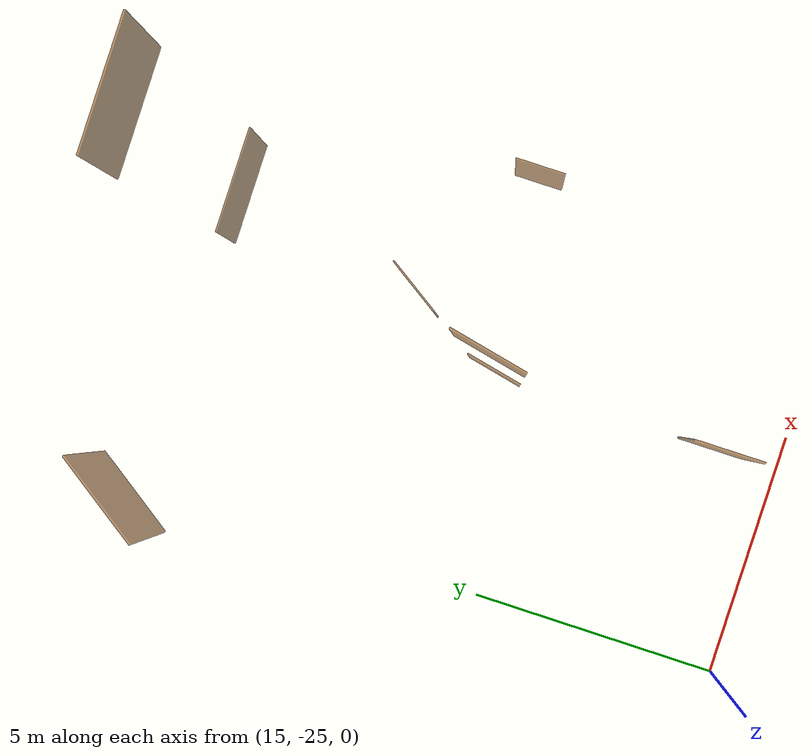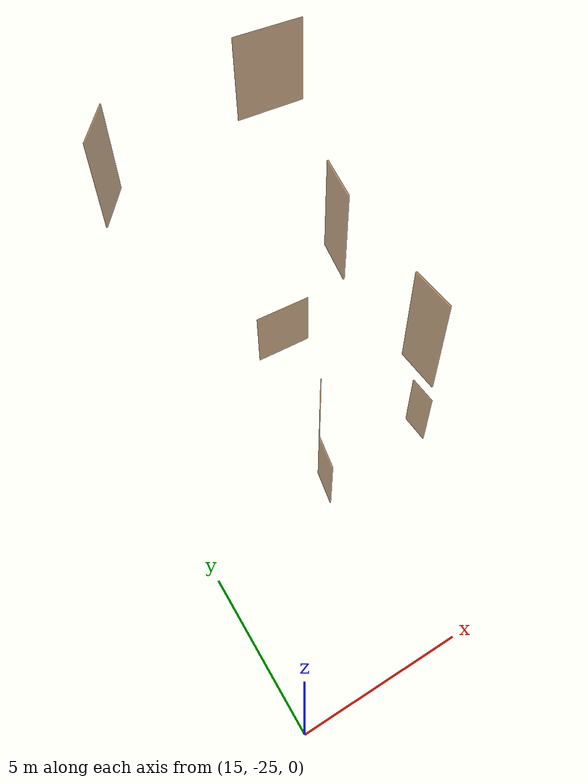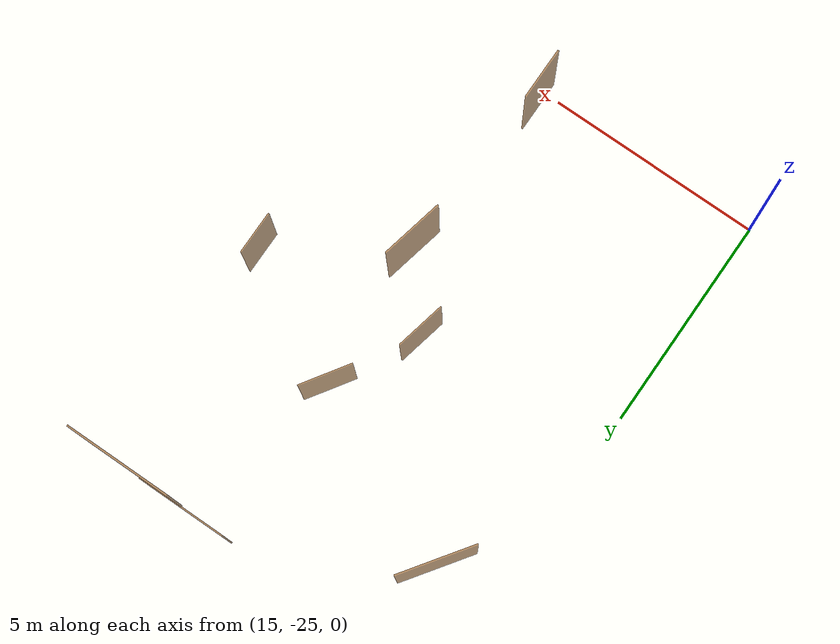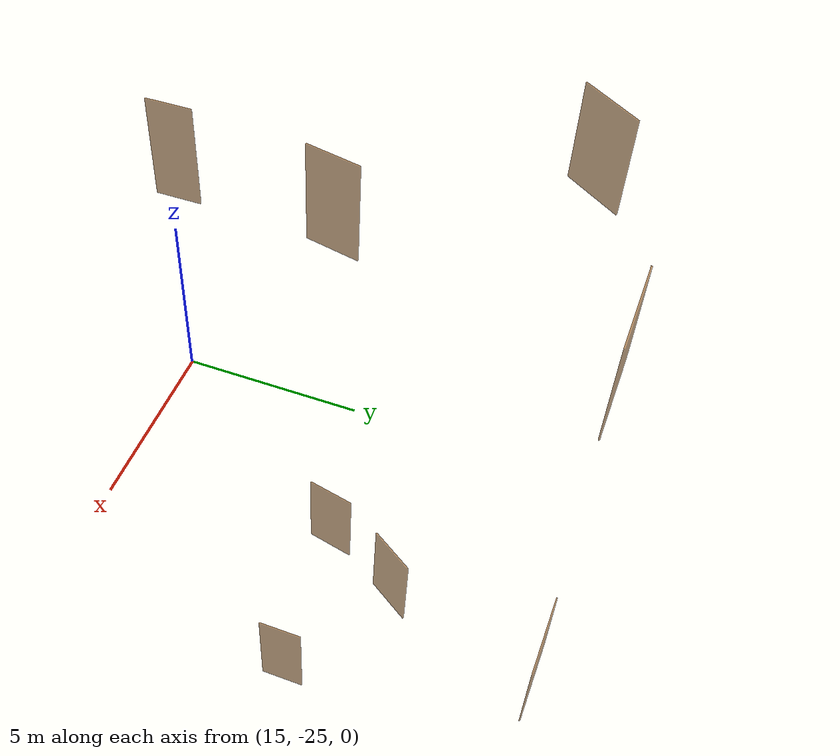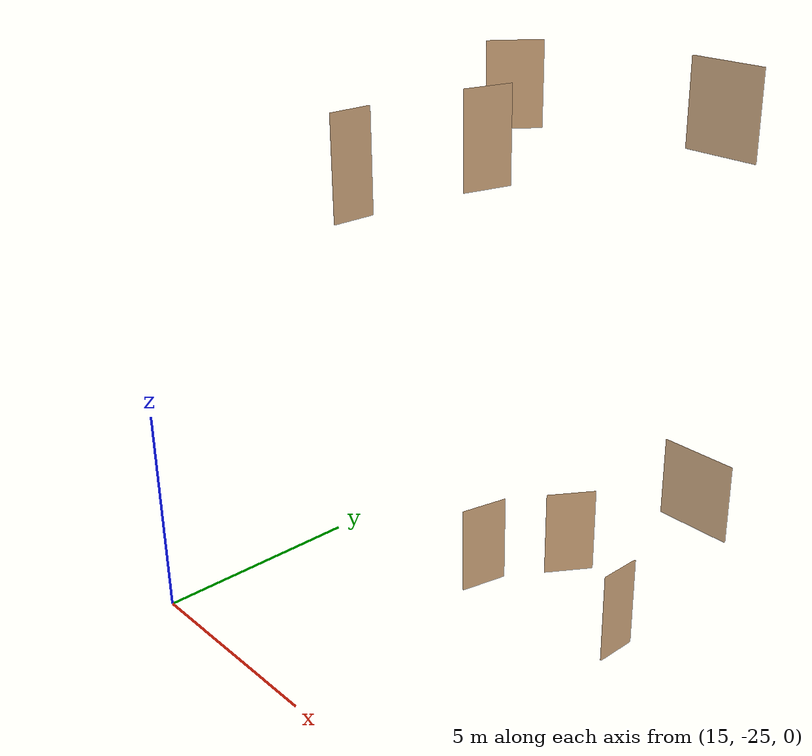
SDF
<sdf version="1.7">
 <world name="sim_world">
  <model name="L1_left_consult_rm_2_inner">
   <pose>23.381523787546655 -18.60085573631785 0.0 0 0 -1.5707963267948966</pose>
   <static>true</static>
   <link name="right">
    <pose>0 0 1.11 0 0 0</pose>
    <visual name="right_visual">
     <geometry><box><size>0.9945421329948851 0.03 2.2</size></box></geometry>
     <material>
      <ambient>0.5 0.25 0 0.6</ambient>
      <diffuse>0.5 0.25 0 0.6</diffuse>
      <pbr><metal><metalness>0.0</metalness></metal></pbr>
     </material>
    </visual>
    <collision name="right_collision">
     <geometry><box><size>0.9945421329948851 0.03 2.2</size></box></geometry>
     <surface><contact><collide_bitmask>0x02</collide_bitmask></contact></surface>
    </collision>
    <inertial>
     <mass>50.0</mass>
     <inertia><ixx>20.17041666666667</ixx><iyy>24.287975226258403</iyy><izz>4.125058559591733</izz></inertia>
    </inertial>
   </link>
   <joint name="right_joint" type="prismatic">
    <parent>world</parent>
    <child>right</child>
    <axis>
     <xyz>1 0 0</xyz>
     <limit><lower>0.0</lower><upper>1.0045421329948852</upper><effort>500.0</effort></limit>
    </axis>
   </joint>
  </model>
  <model name="L1_left_consult_rm_13_inner">
   <pose>20.473727933541035 -17.004284450598067 0.0 0 0 0.9869285289705991</pose>
   <static>true</static>
   <link name="right">
    <pose>0 0 1.11 0 0 0</pose>
    <visual name="right_visual">
     <geometry><box><size>1.2252035838140947 0.03 2.2</size></box></geometry>
     <material>
      <ambient>0.5 0.25 0 0.6</ambient>
      <diffuse>0.5 0.25 0 0.6</diffuse>
      <pbr><metal><metalness>0.0</metalness></metal></pbr>
     </material>
    </visual>
    <collision name="right_collision">
     <geometry><box><size>1.2252035838140947 0.03 2.2</size></box></geometry>
     <surface><contact><collide_bitmask>0x02</collide_bitmask></contact></surface>
    </collision>
    <inertial>
     <mass>50.0</mass>
     <inertia><ixx>20.17041666666667</ixx><iyy>26.421349257462094</iyy><izz>6.258432590795422</izz></inertia>
    </inertial>
   </link>
   <joint name="right_joint" type="revolute">
    <parent>world</parent>
    <child>right</child>
    <axis><xyz>0 0 -1</xyz><limit><lower>0</lower><upper>1.57</upper></limit></axis>
    <pose>0.6176017919070473 0 0 0 0 0</pose>
   </joint>
  </model>
  <model name="L1_left_consult_rm_12_inner">
   <pose>19.442438752355695 -18.948876966270543 0.0 0 0 1.3549047324942773</pose>
   <static>true</static>
   <link name="right">
    <pose>0 0 1.11 0 0 0</pose>
    <visual name="right_visual">
     <geometry><box><size>1.1707228872175774 0.03 2.2</size></box></geometry>
     <material>
      <ambient>0.5 0.25 0 0.6</ambient>
      <diffuse>0.5 0.25 0 0.6</diffuse>
      <pbr><metal><metalness>0.0</metalness></metal></pbr>
     </material>
    </visual>
    <collision name="right_collision">
     <geometry><box><size>1.1707228872175774 0.03 2.2</size></box></geometry>
     <surface><contact><collide_bitmask>0x02</collide_bitmask></contact></surface>
    </collision>
    <inertial>
     <mass>50.0</mass>
     <inertia><ixx>20.17041666666667</ixx><iyy>25.87746699439609</iyy><izz>5.714550327729419</izz></inertia>
    </inertial>
   </link>
   <joint name="right_joint" type="revolute">
    <parent>world</parent>
    <child>right</child>
    <axis><xyz>0 0 -1</xyz><limit><lower>0</lower><upper>1.57</upper></limit></axis>
    <pose>0.5903614436087887 0 0 0 0 0</pose>
   </joint>
  </model>
  <model name="L1_left_inner">
   <pose>21.332204530594996 -13.113995615553259 0.0 0 0 0.0</pose>
   <link name="right">
    <pose>0 0 1.11 0 0 0</pose>
    <visual name="right_visual">
     <geometry><box><size>2.0904845967462773 0.03 2.2</size></box></geometry>
     <material>
      <ambient>0.5 0.25 0 0.6</ambient>
      <diffuse>0.5 0.25 0 0.6</diffuse>
      <pbr><metal><metalness>0.0</metalness></metal></pbr>
     </material>
    </visual>
    <collision name="right_collision">
     <geometry><box><size>2.0904845967462773 0.03 2.2</size></box></geometry>
     <surface><contact><collide_bitmask>0x02</collide_bitmask></contact></surface>
    </collision>
    <inertial>
     <mass>50.0</mass>
     <inertia><ixx>20.17041666666667</ixx><iyy>38.37552437180603</iyy><izz>18.212607705139355</izz></inertia>
    </inertial>
   </link>
   <joint name="right_joint" type="prismatic">
    <parent>world</parent>
    <child>right</child>
    <axis>
     <xyz>1 0 0</xyz>
     <limit><lower>0.0</lower><upper>2.100484596746277</upper><effort>500.0</effort></limit>
    </axis>
   </joint>
   <plugin name="door" filename="libdoor.so">
    <v_max_door>0.2</v_max_door>
    <a_max_door>0.2</a_max_door>
    <a_nom_door>0.08</a_nom_door>
    <dx_min_door>0.001</dx_min_door>
    <f_max_door>100.0</f_max_door>
    <door name="L1_left_inner" type="SlidingDoor" left_joint_name="empty_joint" right_joint_name="right_joint"/>
   </plugin>
  </model>
  <model name="L2_left_consult_rm_13_outer">
   <pose>16.03554863274491 -14.728456597823172 10.0 0 0 0.9593844290063241</pose>
   <static>true</static>
   <link name="right">
    <pose>0 0 1.11 0 0 0</pose>
    <visual name="right_visual">
     <geometry><box><size>1.4433538767392087 0.03 2.2</size></box></geometry>
     <material>
      <ambient>0.5 0.25 0 0.6</ambient>
      <diffuse>0.5 0.25 0 0.6</diffuse>
      <pbr><metal><metalness>0.0</metalness></metal></pbr>
     </material>
    </visual>
    <collision name="right_collision">
     <geometry><box><size>1.4433538767392087 0.03 2.2</size></box></geometry>
     <surface><contact><collide_bitmask>0x02</collide_bitmask></contact></surface>
    </collision>
    <inertial>
     <mass>50.0</mass>
     <inertia><ixx>20.17041666666667</ixx><iyy>28.8469600562421</iyy><izz>8.684043389575429</izz></inertia>
    </inertial>
   </link>
   <joint name="right_joint" type="prismatic">
    <parent>world</parent>
    <child>right</child>
    <axis>
     <xyz>1 0 0</xyz>
     <limit><lower>0.0</lower><upper>1.4533538767392087</upper><effort>500.0</effort></limit>
    </axis>
   </joint>
  </model>
  <model name="L2_left_consult_rm_12_inner">
   <pose>19.442438752355695 -18.948876966270543 10.0 0 0 1.3549047324942773</pose>
   <static>true</static>
   <link name="right">
    <pose>0 0 1.11 0 0 0</pose>
    <visual name="right_visual">
     <geometry><box><size>1.1707228872175774 0.03 2.2</size></box></geometry>
     <material>
      <ambient>0.5 0.25 0 0.6</ambient>
      <diffuse>0.5 0.25 0 0.6</diffuse>
      <pbr><metal><metalness>0.0</metalness></metal></pbr>
     </material>
    </visual>
    <collision name="right_collision">
     <geometry><box><size>1.1707228872175774 0.03 2.2</size></box></geometry>
     <surface><contact><collide_bitmask>0x02</collide_bitmask></contact></surface>
    </collision>
    <inertial>
     <mass>50.0</mass>
     <inertia><ixx>20.17041666666667</ixx><iyy>25.87746699439609</iyy><izz>5.714550327729419</izz></inertia>
    </inertial>
   </link>
   <joint name="right_joint" type="revolute">
    <parent>world</parent>
    <child>right</child>
    <axis><xyz>0 0 -1</xyz><limit><lower>0</lower><upper>1.57</upper></limit></axis>
    <pose>0.5903614436087887 0 0 0 0 0</pose>
   </joint>
  </model>
  <model name="L2_left_consult_rm_11_inner">
   <pose>19.167982000692298 -22.335117880081555 10.0 0 0 1.5707963267948966</pose>
   <static>true</static>
   <link name="right">
    <pose>0 0 1.11 0 0 0</pose>
    <visual name="right_visual">
     <geometry><box><size>0.960216530133456 0.03 2.2</size></box></geometry>
     <material>
      <ambient>0.5 0.25 0 0.6</ambient>
      <diffuse>0.5 0.25 0 0.6</diffuse>
      <pbr><metal><metalness>0.0</metalness></metal></pbr>
     </material>
    </visual>
    <collision name="right_collision">
     <geometry><box><size>0.960216530133456 0.03 2.2</size></box></geometry>
     <surface><contact><collide_bitmask>0x02</collide_bitmask></contact></surface>
    </collision>
    <inertial>
     <mass>50.0</mass>
     <inertia><ixx>20.17041666666667</ixx><iyy>24.00839910308973</iyy><izz>3.8454824364230595</izz></inertia>
    </inertial>
   </link>
   <joint name="right_joint" type="prismatic">
    <parent>world</parent>
    <child>right</child>
    <axis>
     <xyz>1 0 0</xyz>
     <limit><lower>0.0</lower><upper>0.970216530133456</upper><effort>500.0</effort></limit>
    </axis>
   </joint>
  </model>
  <model name="m">
   <pose>21.188777354717146 -13.113995615553259 10.0 0 0 0.0</pose>
   <link name="right">
    <pose>0 0 1.11 0 0 0</pose>
    <visual name="right_visual">
     <geometry><box><size>1.98497711626476 0.03 2.2</size></box></geometry>
     <material>
      <ambient>0.5 0.25 0 0.6</ambient>
      <diffuse>0.5 0.25 0 0.6</diffuse>
      <pbr><metal><metalness>0.0</metalness></metal></pbr>
     </material>
    </visual>
    <collision name="right_collision">
     <geometry><box><size>1.98497711626476 0.03 2.2</size></box></geometry>
     <surface><contact><collide_bitmask>0x02</collide_bitmask></contact></surface>
    </collision>
    <inertial>
     <mass>50.0</mass>
     <inertia><ixx>20.17041666666667</ixx><iyy>36.58389230039485</iyy><izz>16.42097563372818</izz></inertia>
    </inertial>
   </link>
   <joint name="right_joint" type="prismatic">
    <parent>world</parent>
    <child>right</child>
    <axis>
     <xyz>1 0 0</xyz>
     <limit><lower>0.0</lower><upper>1.99497711626476</upper><effort>500.0</effort></limit>
    </axis>
   </joint>
   <plugin name="door" filename="libdoor.so">
    <v_max_door>0.2</v_max_door>
    <a_max_door>0.2</a_max_door>
    <a_nom_door>0.08</a_nom_door>
    <dx_min_door>0.001</dx_min_door>
    <f_max_door>100.0</f_max_door>
    <door name="m" type="SlidingDoor" left_joint_name="empty_joint" right_joint_name="right_joint"/>
   </plugin>
  </model>
 </world>
</sdf>
